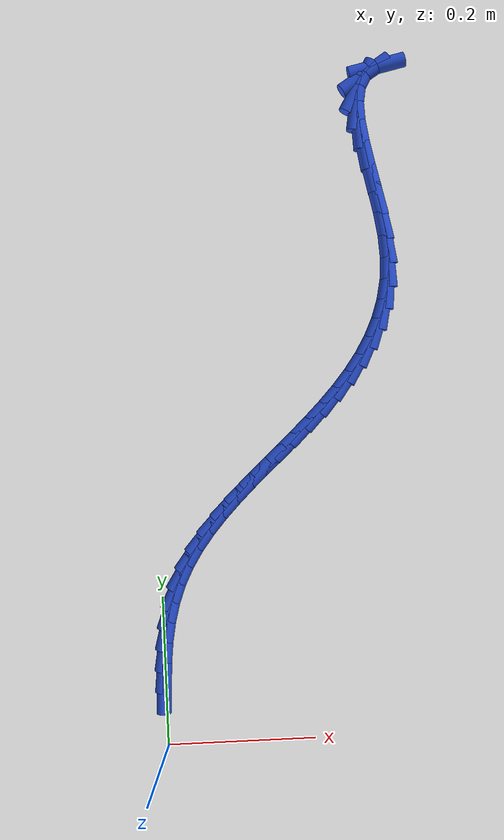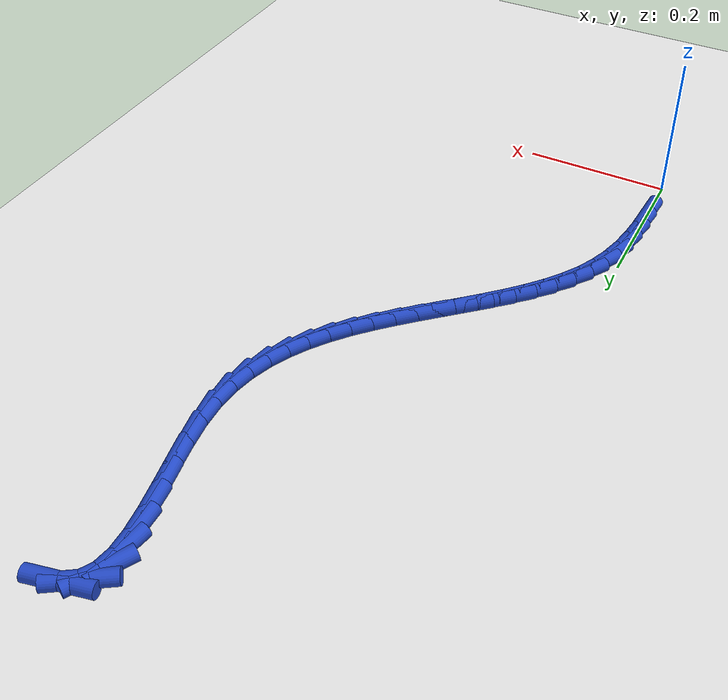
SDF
<sdf version="1.6">
 <world name="default">
  <model name="ground_plane">
   <static>1</static>
   <link name="link">
    <collision name="collision">
     <geometry><plane><normal>0 0 1</normal><size>100 100</size></plane></geometry>
     <surface><friction><ode><mu>100</mu><mu2>50</mu2></ode></friction></surface>
    </collision>
    <visual name="visual">
     <cast_shadows>0</cast_shadows>
     <geometry><plane><normal>0 0 1</normal><size>100 100</size></plane></geometry>
     <material>
      <script><uri>file://media/materials/scripts/gazebo.material</uri><name>Gazebo/WhiteGlow</name></script>
     </material>
    </visual>
   </link>
  </model>
  <model name="line">
   <link name="link_3">
    <pose>-0.001588317726900992 0.0856177545169355 0.01 0 1.57 1.5175069285638434</pose>
    <collision name="collision">
     <geometry><cylinder><radius>0.01</radius><length>0.08</length></cylinder></geometry>
    </collision>
    <visual name="visual">
     <material>
      <script><name>Gazebo/Blue</name><uri>file://media/materials/scripts/gazebo.material</uri></script>
     </material>
     <geometry><cylinder><radius>0.01</radius><length>0.08</length></cylinder></geometry>
    </visual>
   </link>
   <link name="link_4">
    <pose>-7.728077729658939e-05 0.11394621010933835 0.01 0 1.57 1.4622632989782698</pose>
    <collision name="collision">
     <geometry><cylinder><radius>0.01</radius><length>0.08</length></cylinder></geometry>
    </collision>
    <visual name="visual">
     <material>
      <script><name>Gazebo/Blue</name><uri>file://media/materials/scripts/gazebo.material</uri></script>
     </material>
     <geometry><cylinder><radius>0.01</radius><length>0.08</length></cylinder></geometry>
    </visual>
   </link>
   <link name="link_5">
    <pose>0.002960500234291487 0.14182568542567953 0.01 0 1.57 1.3938404987453474</pose>
    <collision name="collision">
     <geometry><cylinder><radius>0.01</radius><length>0.08</length></cylinder></geometry>
    </collision>
    <visual name="visual">
     <material>
      <script><name>Gazebo/Blue</name><uri>file://media/materials/scripts/gazebo.material</uri></script>
     </material>
     <geometry><cylinder><radius>0.01</radius><length>0.08</length></cylinder></geometry>
    </visual>
   </link>
   <link name="link_6">
    <pose>0.00782892888748202 0.16905003107429462 0.01 0 1.57 1.3111564111218528</pose>
    <collision name="collision">
     <geometry><cylinder><radius>0.01</radius><length>0.08</length></cylinder></geometry>
    </collision>
    <visual name="visual">
     <material>
      <script><name>Gazebo/Blue</name><uri>file://media/materials/scripts/gazebo.material</uri></script>
     </material>
     <geometry><cylinder><radius>0.01</radius><length>0.08</length></cylinder></geometry>
    </visual>
   </link>
   <link name="link_7">
    <pose>0.014831908761893782 0.19541309766351916 0.01 0 1.57 1.213566415298523</pose>
    <collision name="collision">
     <geometry><cylinder><radius>0.01</radius><length>0.08</length></cylinder></geometry>
    </collision>
    <visual name="visual">
     <material>
      <script><name>Gazebo/Blue</name><uri>file://media/materials/scripts/gazebo.material</uri></script>
     </material>
     <geometry><cylinder><radius>0.01</radius><length>0.08</length></cylinder></geometry>
    </visual>
   </link>
   <link name="link_8">
    <pose>0.024273343437145555 0.22070873580168898 0.01 0 1.57 1.1051298692728908</pose>
    <collision name="collision">
     <geometry><cylinder><radius>0.01</radius><length>0.08</length></cylinder></geometry>
    </collision>
    <visual name="visual">
     <material>
      <script><name>Gazebo/Blue</name><uri>file://media/materials/scripts/gazebo.material</uri></script>
     </material>
     <geometry><cylinder><radius>0.01</radius><length>0.08</length></cylinder></geometry>
    </visual>
   </link>
   <link name="link_9">
    <pose>0.03637018985321749 0.2447808110211887 0.01 0 1.57 1.0060598931638673</pose>
    <collision name="collision">
     <geometry><cylinder><radius>0.01</radius><length>0.08</length></cylinder></geometry>
    </collision>
    <visual name="visual">
     <material>
      <script><name>Gazebo/Blue</name><uri>file://media/materials/scripts/gazebo.material</uri></script>
     </material>
     <geometry><cylinder><radius>0.01</radius><length>0.08</length></cylinder></geometry>
    </visual>
   </link>
   <link name="link_10">
    <pose>0.050905483831939394 0.2677227963361615 0.01 0 1.57 0.9233946547981546</pose>
    <collision name="collision">
     <geometry><cylinder><radius>0.01</radius><length>0.08</length></cylinder></geometry>
    </collision>
    <visual name="visual">
     <material>
      <script><name>Gazebo/Blue</name><uri>file://media/materials/scripts/gazebo.material</uri></script>
     </material>
     <geometry><cylinder><radius>0.01</radius><length>0.08</length></cylinder></geometry>
    </visual>
   </link>
   <link name="link_11">
    <pose>0.06752716633747341 0.28970587632124006 0.01 0 1.57 0.8570658186349505</pose>
    <collision name="collision">
     <geometry><cylinder><radius>0.01</radius><length>0.08</length></cylinder></geometry>
    </collision>
    <visual name="visual">
     <material>
      <script><name>Gazebo/Blue</name><uri>file://media/materials/scripts/gazebo.material</uri></script>
     </material>
     <geometry><cylinder><radius>0.01</radius><length>0.08</length></cylinder></geometry>
    </visual>
   </link>
   <link name="link_12">
    <pose>0.08588313487057297 0.31090126055281836 0.01 0 1.57 0.8062485022180202</pose>
    <collision name="collision">
     <geometry><cylinder><radius>0.01</radius><length>0.08</length></cylinder></geometry>
    </collision>
    <visual name="visual">
     <material>
      <script><name>Gazebo/Blue</name><uri>file://media/materials/scripts/gazebo.material</uri></script>
     </material>
     <geometry><cylinder><radius>0.01</radius><length>0.08</length></cylinder></geometry>
    </visual>
   </link>
   <link name="link_13">
    <pose>0.10562128693199165 0.33148015860729013 0.01 0 1.57 0.7698839348173023</pose>
    <collision name="collision">
     <geometry><cylinder><radius>0.01</radius><length>0.08</length></cylinder></geometry>
    </collision>
    <visual name="visual">
     <material>
      <script><name>Gazebo/Blue</name><uri>file://media/materials/scripts/gazebo.material</uri></script>
     </material>
     <geometry><cylinder><radius>0.01</radius><length>0.08</length></cylinder></geometry>
    </visual>
   </link>
   <link name="link_14">
    <pose>0.12638952002248283 0.35161378006104876 0.01 0 1.57 0.7470045527305095</pose>
    <collision name="collision">
     <geometry><cylinder><radius>0.01</radius><length>0.08</length></cylinder></geometry>
    </collision>
    <visual name="visual">
     <material>
      <script><name>Gazebo/Blue</name><uri>file://media/materials/scripts/gazebo.material</uri></script>
     </material>
     <geometry><cylinder><radius>0.01</radius><length>0.08</length></cylinder></geometry>
    </visual>
   </link>
   <link name="link_15">
    <pose>0.14783573164280014 0.3714733344904882 0.01 0 1.57 0.7369062383043258</pose>
    <collision name="collision">
     <geometry><cylinder><radius>0.01</radius><length>0.08</length></cylinder></geometry>
    </collision>
    <visual name="visual">
     <material>
      <script><name>Gazebo/Blue</name><uri>file://media/materials/scripts/gazebo.material</uri></script>
     </material>
     <geometry><cylinder><radius>0.01</radius><length>0.08</length></cylinder></geometry>
    </visual>
   </link>
   <link name="link_16">
    <pose>0.16960781929369692 0.39123003147200197 0.01 0 1.57 0.7392253263858691</pose>
    <collision name="collision">
     <geometry><cylinder><radius>0.01</radius><length>0.08</length></cylinder></geometry>
    </collision>
    <visual name="visual">
     <material>
      <script><name>Gazebo/Blue</name><uri>file://media/materials/scripts/gazebo.material</uri></script>
     </material>
     <geometry><cylinder><radius>0.01</radius><length>0.08</length></cylinder></geometry>
    </visual>
   </link>
   <link name="link_17">
    <pose>0.19135368047592666 0.4110550805819838 0.01 0 1.57 0.7539614076946596</pose>
    <collision name="collision">
     <geometry><cylinder><radius>0.01</radius><length>0.08</length></cylinder></geometry>
    </collision>
    <visual name="visual">
     <material>
      <script><name>Gazebo/Blue</name><uri>file://media/materials/scripts/gazebo.material</uri></script>
     </material>
     <geometry><cylinder><radius>0.01</radius><length>0.08</length></cylinder></geometry>
    </visual>
   </link>
   <link name="link_18">
    <pose>0.212721212690243 0.43111969139682754 0.01 0 1.57 0.7814646180167457</pose>
    <collision name="collision">
     <geometry><cylinder><radius>0.01</radius><length>0.08</length></cylinder></geometry>
    </collision>
    <visual name="visual">
     <material>
      <script><name>Gazebo/Blue</name><uri>file://media/materials/scripts/gazebo.material</uri></script>
     </material>
     <geometry><cylinder><radius>0.01</radius><length>0.08</length></cylinder></geometry>
    </visual>
   </link>
   <link name="link_19">
    <pose>0.2333583134373992 0.4515950734929266 0.01 0 1.57 0.8223850987273342</pose>
    <collision name="collision">
     <geometry><cylinder><radius>0.01</radius><length>0.08</length></cylinder></geometry>
    </collision>
    <visual name="visual">
     <material>
      <script><name>Gazebo/Blue</name><uri>file://media/materials/scripts/gazebo.material</uri></script>
     </material>
     <geometry><cylinder><radius>0.01</radius><length>0.08</length></cylinder></geometry>
    </visual>
   </link>
   <link name="link_20">
    <pose>0.252912880218149 0.472652436446675 0.01 0 1.57 0.8775625224028165</pose>
    <collision name="collision">
     <geometry><cylinder><radius>0.01</radius><length>0.08</length></cylinder></geometry>
    </collision>
    <visual name="visual">
     <material>
      <script><name>Gazebo/Blue</name><uri>file://media/materials/scripts/gazebo.material</uri></script>
     </material>
     <geometry><cylinder><radius>0.01</radius><length>0.08</length></cylinder></geometry>
    </visual>
   </link>
   <link name="link_21">
    <pose>0.2710328105332457 0.4944629898344662 0.01 0 1.57 0.94781618550679</pose>
    <collision name="collision">
     <geometry><cylinder><radius>0.01</radius><length>0.08</length></cylinder></geometry>
    </collision>
    <visual name="visual">
     <material>
      <script><name>Gazebo/Blue</name><uri>file://media/materials/scripts/gazebo.material</uri></script>
     </material>
     <geometry><cylinder><radius>0.01</radius><length>0.08</length></cylinder></geometry>
    </visual>
   </link>
   <link name="link_22">
    <pose>0.2873660018834429 0.517197943232694 0.01 0 1.57 1.0335915602208208</pose>
    <collision name="collision">
     <geometry><cylinder><radius>0.01</radius><length>0.08</length></cylinder></geometry>
    </collision>
    <visual name="visual">
     <material>
      <script><name>Gazebo/Blue</name><uri>file://media/materials/scripts/gazebo.material</uri></script>
     </material>
     <geometry><cylinder><radius>0.01</radius><length>0.08</length></cylinder></geometry>
    </visual>
   </link>
   <link name="link_23">
    <pose>0.3015603517694939 0.5410285062177519 0.01 0 1.57 1.1344540504657912</pose>
    <collision name="collision">
     <geometry><cylinder><radius>0.01</radius><length>0.08</length></cylinder></geometry>
    </collision>
    <visual name="visual">
     <material>
      <script><name>Gazebo/Blue</name><uri>file://media/materials/scripts/gazebo.material</uri></script>
     </material>
     <geometry><cylinder><radius>0.01</radius><length>0.08</length></cylinder></geometry>
    </visual>
   </link>
   <link name="link_24">
    <pose>0.3132637576921525 0.5661258883660338 0.01 0 1.57 1.2485295607187281</pose>
    <collision name="collision">
     <geometry><cylinder><radius>0.01</radius><length>0.08</length></cylinder></geometry>
    </collision>
    <visual name="visual">
     <material>
      <script><name>Gazebo/Blue</name><uri>file://media/materials/scripts/gazebo.material</uri></script>
     </material>
     <geometry><cylinder><radius>0.01</radius><length>0.08</length></cylinder></geometry>
    </visual>
   </link>
   <link name="link_25">
    <pose>0.3221241171521718 0.5926612992539333 0.01 0 1.57 1.3721615763816375</pose>
    <collision name="collision">
     <geometry><cylinder><radius>0.01</radius><length>0.08</length></cylinder></geometry>
    </collision>
    <visual name="visual">
     <material>
      <script><name>Gazebo/Blue</name><uri>file://media/materials/scripts/gazebo.material</uri></script>
     </material>
     <geometry><cylinder><radius>0.01</radius><length>0.08</length></cylinder></geometry>
    </visual>
   </link>
   <link name="link_26">
    <pose>0.3277893276503056 0.6208059484578441 0.01 0 1.57 1.500138803783585</pose>
    <collision name="collision">
     <geometry><cylinder><radius>0.01</radius><length>0.08</length></cylinder></geometry>
    </collision>
    <visual name="visual">
     <material>
      <script><name>Gazebo/Blue</name><uri>file://media/materials/scripts/gazebo.material</uri></script>
     </material>
     <geometry><cylinder><radius>0.01</radius><length>0.08</length></cylinder></geometry>
    </visual>
   </link>
   <link name="link_27">
    <pose>0.3299072866873071 0.6507310455541597 0.01 0 1.57 -1.5180559374970308</pose>
    <collision name="collision">
     <geometry><cylinder><radius>0.01</radius><length>0.08</length></cylinder></geometry>
    </collision>
    <visual name="visual">
     <material>
      <script><name>Gazebo/Blue</name><uri>file://media/materials/scripts/gazebo.material</uri></script>
     </material>
     <geometry><cylinder><radius>0.01</radius><length>0.08</length></cylinder></geometry>
    </visual>
   </link>
   <link name="link_28">
    <pose>0.32822816356438206 0.6825390394324435 0.01 0 1.57 -1.4284534308537788</pose>
    <collision name="collision">
     <geometry><cylinder><radius>0.01</radius><length>0.08</length></cylinder></geometry>
    </collision>
    <visual name="visual">
     <material>
      <script><name>Gazebo/Blue</name><uri>file://media/materials/scripts/gazebo.material</uri></script>
     </material>
     <geometry><cylinder><radius>0.01</radius><length>0.08</length></cylinder></geometry>
    </visual>
   </link>
   <link name="link_29">
    <pose>0.32347932503253163 0.7156753770763458 0.01 0 1.57 -1.378004912428191</pose>
    <collision name="collision">
     <geometry><cylinder><radius>0.01</radius><length>0.08</length></cylinder></geometry>
    </collision>
    <visual name="visual">
     <material>
      <script><name>Gazebo/Blue</name><uri>file://media/materials/scripts/gazebo.material</uri></script>
     </material>
     <geometry><cylinder><radius>0.01</radius><length>0.08</length></cylinder></geometry>
    </visual>
   </link>
   <link name="link_30">
    <pose>0.31693073999039123 0.7492206962436859 0.01 0 1.57 -1.3598628349203699</pose>
    <collision name="collision">
     <geometry><cylinder><radius>0.01</radius><length>0.08</length></cylinder></geometry>
    </collision>
    <visual name="visual">
     <material>
      <script><name>Gazebo/Blue</name><uri>file://media/materials/scripts/gazebo.material</uri></script>
     </material>
     <geometry><cylinder><radius>0.01</radius><length>0.08</length></cylinder></geometry>
    </visual>
   </link>
   <link name="link_31">
    <pose>0.3098581830123506 0.7822517313459958 0.01 0 1.57 -1.373338155935342</pose>
    <collision name="collision">
     <geometry><cylinder><radius>0.01</radius><length>0.08</length></cylinder></geometry>
    </collision>
    <visual name="visual">
     <material>
      <script><name>Gazebo/Blue</name><uri>file://media/materials/scripts/gazebo.material</uri></script>
     </material>
     <geometry><cylinder><radius>0.01</radius><length>0.08</length></cylinder></geometry>
    </visual>
   </link>
   <link name="link_32">
    <pose>0.3035374286727999 0.8138452167948091 0.01 0 1.57 -1.4249764397873044</pose>
    <collision name="collision">
     <geometry><cylinder><radius>0.01</radius><length>0.08</length></cylinder></geometry>
    </collision>
    <visual name="visual">
     <material>
      <script><name>Gazebo/Blue</name><uri>file://media/materials/scripts/gazebo.material</uri></script>
     </material>
     <geometry><cylinder><radius>0.01</radius><length>0.08</length></cylinder></geometry>
    </visual>
   </link>
   <link name="link_33">
    <pose>0.29924425154612905 0.8430778870016579 0.01 0 1.57 -1.5326691804968642</pose>
    <collision name="collision">
     <geometry><cylinder><radius>0.01</radius><length>0.08</length></cylinder></geometry>
    </collision>
    <visual name="visual">
     <material>
      <script><name>Gazebo/Blue</name><uri>file://media/materials/scripts/gazebo.material</uri></script>
     </material>
     <geometry><cylinder><radius>0.01</radius><length>0.08</length></cylinder></geometry>
    </visual>
   </link>
   <link name="link_34">
    <pose>0.29825442620672804 0.8690264763780754 0.01 0 1.57 1.4071803383604398</pose>
    <collision name="collision">
     <geometry><cylinder><radius>0.01</radius><length>0.08</length></cylinder></geometry>
    </collision>
    <visual name="visual">
     <material>
      <script><name>Gazebo/Blue</name><uri>file://media/materials/scripts/gazebo.material</uri></script>
     </material>
     <geometry><cylinder><radius>0.01</radius><length>0.08</length></cylinder></geometry>
    </visual>
   </link>
   <link name="link_35">
    <pose>0.3018437272289866 0.8907677193355936 0.01 0 1.57 1.053812542477235</pose>
    <collision name="collision">
     <geometry><cylinder><radius>0.01</radius><length>0.08</length></cylinder></geometry>
    </collision>
    <visual name="visual">
     <material>
      <script><name>Gazebo/Blue</name><uri>file://media/materials/scripts/gazebo.material</uri></script>
     </material>
     <geometry><cylinder><radius>0.01</radius><length>0.08</length></cylinder></geometry>
    </visual>
   </link>
   <link name="link_36">
    <pose>0.311287929187295 0.9073783502857461 0.01 0 1.57 0.5731029123995073</pose>
    <collision name="collision">
     <geometry><cylinder><radius>0.01</radius><length>0.08</length></cylinder></geometry>
    </collision>
    <visual name="visual">
     <material>
      <script><name>Gazebo/Blue</name><uri>file://media/materials/scripts/gazebo.material</uri></script>
     </material>
     <geometry><cylinder><radius>0.01</radius><length>0.08</length></cylinder></geometry>
    </visual>
   </link>
   <link name="link_37">
    <pose>0.3277672467987188 0.9180133603840078 0.01 0 1.57 0.2155673965269952</pose>
    <collision name="collision">
     <geometry><cylinder><radius>0.01</radius><length>0.08</length></cylinder></geometry>
    </collision>
    <visual name="visual">
     <material>
      <script><name>Gazebo/Blue</name><uri>file://media/materials/scripts/gazebo.material</uri></script>
     </material>
     <geometry><cylinder><radius>0.01</radius><length>0.08</length></cylinder></geometry>
    </visual>
   </link>
  </model>
 </world>
</sdf>
